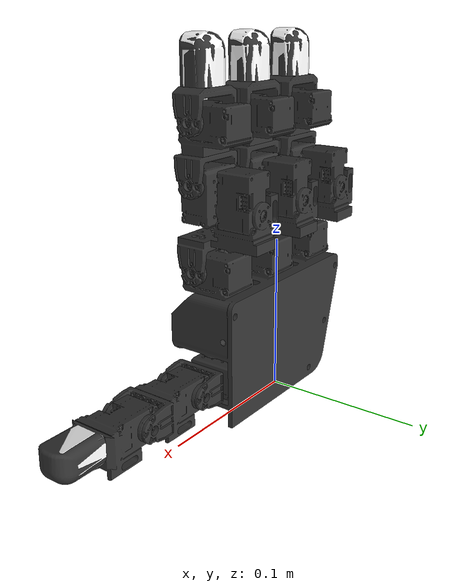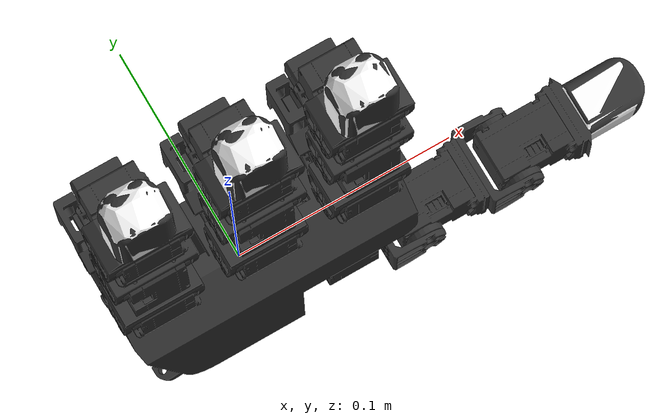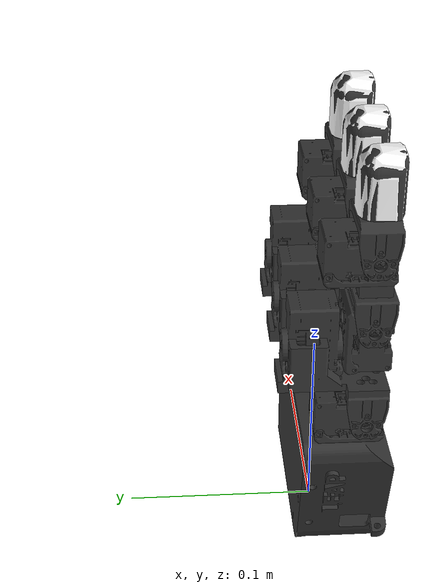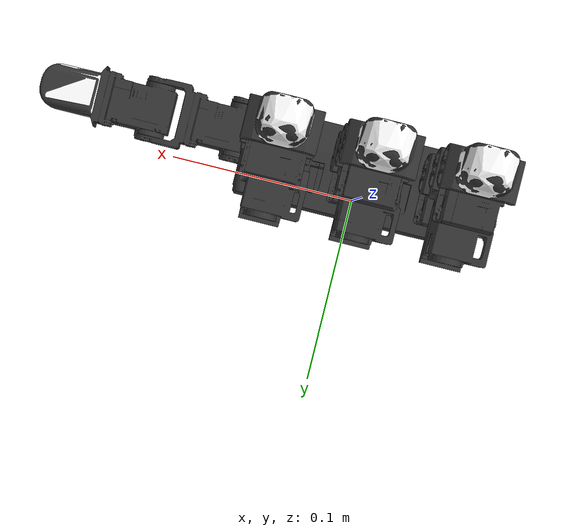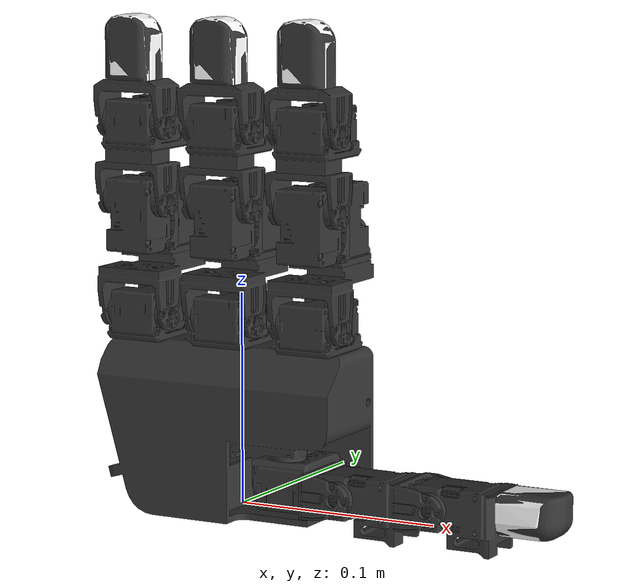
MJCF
<mujoco model="leap_right">
  <compiler angle="radian" meshdir="./assets/"/>
  <option integrator="implicitfast" cone="elliptic" impratio="100"/>

  <default>
    <default class="robot">
      <default class="motor">
        <joint damping="0.03" frictionloss="0.001" />
        <position kp="3.0" kv="0.01" />
      </default>
      <default class="visual">
        <geom material="default_material" contype="0" conaffinity="0" group="1" />
      </default>
      <default class="collision">
        <geom condim="3" contype="1" conaffinity="1" priority="1" group="3" solref="0.005 1" solimp="0.99 0.999 1e-05" friction="1 0.01 0.01" />
      </default>
    </default>
  </default>

  <asset>
    <material name="default_material" rgba="0.2 0.2 0.2 1" />
    <material name="white" rgba="1 1 1 1" />

    <!-- visual meshes (URDF names → actual .obj files in assets/) -->
    <mesh name="palm_lower.obj" file="palm_right.obj" />
    <mesh name="mcp_joint.obj" file="base.obj" />
    <mesh name="pip.obj" file="proximal.obj" />
    <mesh name="dip.obj" file="medial.obj" />
    <mesh name="fingertip.obj" file="distal.obj" />
    <mesh name="thumb_pip.obj" file="thumb_base.obj" />
    <mesh name="thumb_dip.obj" file="thumb_proximal.obj" />
    <mesh name="thumb_fingertip.obj" file="thumb_distal.obj" />
    <!-- collision tip meshes -->
    <mesh name="white_tip.obj" file="tip.obj" />
    <mesh name="white_tip_thumb.obj" file="thumb_tip.obj" />
  </asset>

  <worldbody>
    <body name="arm_attachment" pos="0 0 0" childclass="robot">
    <body name="base" pos="0.0 0.0 0.0" euler="0 0 -1.5708">
      <body name="palm_lower" pos="0 0.038 0.098" quat="0.7071090180427968 0.0 -0.7071045443232221 0.0">
        <inertial pos="0 0 0" quat="1.0 0.0 0.0 0.0" mass="0.237" diaginertia="0.000354094 0.000260915 0.000529257" />
        <geom name="palm_lower_collision_0" pos="-0.009 0.008 -0.011" quat="1.0 0.0 0.0 0.0" type="box" size="0.011 0.013 0.017" class="collision" />
        <geom name="palm_lower_collision_1" pos="-0.009 -0.037 -0.011" quat="1.0 0.0 0.0 0.0" type="box" size="0.011 0.013 0.017" class="collision" />
        <geom name="palm_lower_collision_2" pos="-0.009 -0.082 -0.011" quat="1.0 0.0 0.0 0.0" type="box" size="0.011 0.013 0.017" class="collision" />
        <geom name="palm_lower_collision_3" pos="-0.066 -0.078 -0.0115" quat="0.9890163047784168 0.0 0.0 -0.14780645751267352" type="box" size="0.029 0.01 0.023" class="collision" />
        <geom name="palm_lower_collision_4" pos="-0.03 -0.035 -0.003" quat="1.0 0.0 0.0 0.0" type="box" size="0.01 0.06 0.015" class="collision" />
        <geom name="palm_lower_collision_5" pos="-0.032 -0.035 -0.024" quat="0.9239556994702721 0.0 0.3824994972760097 0.0" type="box" size="0.005 0.06 0.01" class="collision" />
        <geom name="palm_lower_collision_6" pos="-0.048 -0.033 -0.0115" quat="1.0 0.0 0.0 0.0" type="box" size="0.012 0.058 0.023" class="collision" />
        <geom name="palm_lower_collision_7" pos="-0.078 -0.053 -0.0115" quat="1.0 0.0 0.0 0.0" type="box" size="0.022 0.026 0.023" class="collision" />
        <geom name="palm_lower_collision_8" pos="-0.098 -0.009 -0.006" quat="1.0 0.0 0.0 0.0" type="box" size="0.002 0.018 0.017" class="collision" />
        <geom name="palm_lower_collision_9" pos="-0.078 -0.003 0.01" quat="1.0 0.0 0.0 0.0" type="box" size="0.022 0.028 0.002" class="collision" />
        <geom name="palm_lower_visual" pos="-0.0200 0.02575 -0.0347" quat="1.0 0.0 0.0 0.0" material="default_material" type="mesh" mesh="palm_lower.obj" class="visual" />
        <body name="mcp_joint" pos="-0.0070 0.0230 -0.0187" quat="0.5000031633974483 0.4999999999899929 0.4999999999899929 -0.49999683660255156">
          <joint name="1" type="hinge" ref="0.0" class="motor" range="-0.314 2.23" axis="0 0 -1" />
          <inertial pos="0 0 0" quat="1.0 0.0 0.0 0.0" mass="0.044" diaginertia="1.1499e-05 7.796e-06 1.4759e-05" />
          <geom name="mcp_joint_collision_0" pos="0 0.018 0.0147" quat="1.0 0.0 0.0 0.0" type="box" size="0.01 0.003 0.017" class="collision" />
          <geom name="mcp_joint_collision_1" pos="-0.027 0.042 0.015" quat="1.0 0.0 0.0 0.0" type="box" size="0.014 0.02 0.01" class="collision" />
          <geom name="mcp_joint_collision_2" pos="-0.0262 0.02 0.0146" quat="1.0 0.0 0.0 0.0" type="box" size="0.017 0.003 0.01" class="collision" />
          <geom name="mcp_joint_collision_3" pos="-0.0295 0.035 0.029" quat="1.0 0.0 0.0 0.0" type="box" size="0.01 0.012 0.004" class="collision" />
          <geom name="mcp_joint_collision_4" pos="0 0.005 0.03" quat="1.0 0.0 0.0 0.0" type="box" size="0.007 0.01 0.002" class="collision" />
          <geom name="mcp_joint_collision_5" pos="0 0.005 -0.001" quat="1.0 0.0 0.0 0.0" type="box" size="0.007 0.01 0.002" class="collision" />
          <geom name="mcp_joint_visual" pos="0.0084 0.0077 0.01465" quat="1.0 0.0 0.0 0.0" material="default_material" type="mesh" mesh="mcp_joint.obj" class="visual" />
          <body name="pip" pos="-0.0122 0.03810 0.01450" quat="0.5000031633974483 -0.4999999999899929 -0.49999683660255156 0.4999999999899929">
            <joint name="0" type="hinge" ref="0.0" class="motor" range="-1.047 1.047" axis="0 0 -1" />
            <inertial pos="0 0 0" quat="1.0 0.0 0.0 0.0" mass="0.032" diaginertia="4.798e-06 2.862e-06 4.234e-06" />
            <geom name="pip_collision" pos="0.0075 -0.0002 -0.011" quat="1.0 0.0 0.0 0.0" type="box" size="0.017 0.013 0.011" class="collision" />
            <geom name="pip_visual" pos="0.0096 0.0002 0.0007" quat="0.5000031633974483 -0.4999999999899929 -0.4999999999899929 -0.49999683660255156" material="default_material" type="mesh" mesh="pip.obj" class="visual" />
            <body name="dip" pos="0.015 0.0143 -0.013" quat="0.5000031633974483 0.4999999999899929 -0.4999999999899929 0.49999683660255156">
              <joint name="2" type="hinge" ref="0.0" class="motor" range="-0.506 1.885" axis="0 0 -1" />
              <inertial pos="0 0 0" quat="1.0 0.0 0.0 0.0" mass="0.037" diaginertia="5.542e-06 5.727e-06 6.682e-06" />
              <geom name="dip_collision_0" pos="0 -0.02 0.015" quat="1.0 0.0 0.0 0.0" type="box" size="0.008 0.003 0.013" class="collision" />
              <geom name="dip_collision_1" pos="0 -0.016 0.015" quat="1.0 0.0 0.0 0.0" type="box" size="0.01 0.002 0.017" class="collision" />
              <geom name="dip_collision_2" pos="0 -0.0045 0.03" quat="1.0 0.0 0.0 0.0" type="box" size="0.007 0.01 0.002" class="collision" />
              <geom name="dip_collision_3" pos="0 -0.0045 0" quat="1.0 0.0 0.0 0.0" type="box" size="0.007 0.01 0.002" class="collision" />
              <geom name="dip_collision_4" pos="0.0075 -0.035 0.015" quat="1.0 0.0 0.0 0.0" type="box" size="0.017 0.011 0.013" class="collision" />
              <geom name="dip_visual" pos="0.0211 -0.0084 0.0097" quat="2.6794896585028633e-08 -0.9999999999999997 0.0 0.0" material="default_material" type="mesh" mesh="dip.obj" class="visual" />
              <body name="fingertip" pos="0 -0.0361 0.0002" quat="1.0 0.0 0.0 0.0">
                <joint name="3" type="hinge" ref="0.0" class="motor" range="-0.366 2.042" axis="0 0 -1" />
                <inertial pos="0 0 0" quat="1.0 0.0 0.0 0.0" mass="0.016" diaginertia="3.368e-06 1.556e-06 2.863e-06" />
                <geom name="fingertip_collision_0" pos="0 -0.017 0.015" quat="1.0 0.0 0.0 0.0" type="box" size="0.01 0.003 0.015" class="collision" />
                <geom name="fingertip_collision_1" pos="0 -0.006 0.03" quat="1.0 0.0 0.0 0.0" type="box" size="0.007 0.011 0.002" class="collision" />
                <geom name="fingertip_collision_2" pos="0 -0.006 -0.001" quat="1.0 0.0 0.0 0.0" type="box" size="0.007 0.011 0.002" class="collision" />
                <geom name="fingertip_collision_3" pos="0 0 0" quat="1.0 0.0 0.0 0.0" type="mesh" mesh="white_tip.obj" class="collision" />
                <geom name="fingertip_visual" pos="0.0132 -0.0061 0.0144" quat="2.6794896585028633e-08 0.9999999999999997 0.0 0.0" material="default_material" type="mesh" mesh="fingertip.obj" class="visual" />
                <geom name="fingertip_tip_visual" pos="0 0 0" type="mesh" mesh="white_tip.obj" material="white" class="visual" />
                <body name="index_tip_head" pos="0 -0.048 0.015" quat="1.0 0.0 0.0 0.0" />
              </body>
            </body>
          </body>
        </body>
        <body name="mcp_joint_2" pos="-0.0071 -0.0224 -0.0187" quat="0.5000031633974483 0.4999999999899929 0.4999999999899929 -0.49999683660255156">
          <joint name="5" type="hinge" ref="0.0" class="motor" range="-0.314 2.23" axis="0 0 -1" />
          <inertial pos="0 0 0" quat="1.0 0.0 0.0 0.0" mass="0.044" diaginertia="1.1499e-05 7.796e-06 1.4759e-05" />
          <geom name="mcp_joint_2_collision_0" pos="0 0.018 0.0147" quat="1.0 0.0 0.0 0.0" type="box" size="0.01 0.003 0.017" class="collision" />
          <geom name="mcp_joint_2_collision_1" pos="-0.027 0.042 0.015" quat="1.0 0.0 0.0 0.0" type="box" size="0.014 0.02 0.01" class="collision" />
          <geom name="mcp_joint_2_collision_2" pos="-0.0262 0.02 0.0146" quat="1.0 0.0 0.0 0.0" type="box" size="0.017 0.003 0.01" class="collision" />
          <geom name="mcp_joint_2_collision_3" pos="-0.0295 0.035 0.029" quat="1.0 0.0 0.0 0.0" type="box" size="0.01 0.012 0.004" class="collision" />
          <geom name="mcp_joint_2_collision_4" pos="0 0.005 0.03" quat="1.0 0.0 0.0 0.0" type="box" size="0.007 0.01 0.002" class="collision" />
          <geom name="mcp_joint_2_collision_5" pos="0 0.005 -0.001" quat="1.0 0.0 0.0 0.0" type="box" size="0.007 0.01 0.002" class="collision" />
          <geom name="mcp_joint_2_visual" pos="0.0084 0.0077 0.01465" quat="1.0 0.0 0.0 0.0" material="default_material" type="mesh" mesh="mcp_joint.obj" class="visual" />
          <body name="pip_2" pos="-0.0122 0.0381 0.0145" quat="0.5000031633974483 -0.4999999999899929 -0.49999683660255156 0.4999999999899929">
            <joint name="4" type="hinge" ref="0.0" class="motor" range="-1.047 1.047" axis="0 0 -1" />
            <inertial pos="0 0 0" quat="1.0 0.0 0.0 0.0" mass="0.032" diaginertia="4.798e-06 2.862e-06 4.234e-06" />
            <geom name="pip_2_collision" pos="0.0075 -0.0002 -0.011" quat="1.0 0.0 0.0 0.0" type="box" size="0.017 0.013 0.011" class="collision" />
            <geom name="pip_2_visual" pos="0.0096 0.0003 0.0007" quat="0.5000031633974483 -0.4999999999899929 -0.4999999999899929 -0.49999683660255156" material="default_material" type="mesh" mesh="pip.obj" class="visual" />
            <body name="dip_2" pos="0.015 0.0143 -0.013" quat="0.5000031633974483 0.4999999999899929 -0.4999999999899929 0.49999683660255156">
              <joint name="6" type="hinge" ref="0.0" class="motor" range="-0.506 1.885" axis="0 0 -1" />
              <inertial pos="0 0 0" quat="1.0 0.0 0.0 0.0" mass="0.037" diaginertia="5.542e-06 5.727e-06 6.682e-06" />
              <geom name="dip_2_collision_0" pos="0 -0.02 0.015" quat="1.0 0.0 0.0 0.0" type="box" size="0.008 0.003 0.013" class="collision" />
              <geom name="dip_2_collision_1" pos="0 -0.016 0.015" quat="1.0 0.0 0.0 0.0" type="box" size="0.01 0.002 0.017" class="collision" />
              <geom name="dip_2_collision_2" pos="0 -0.0045 0.03" quat="1.0 0.0 0.0 0.0" type="box" size="0.007 0.01 0.002" class="collision" />
              <geom name="dip_2_collision_3" pos="0 -0.0045 0" quat="1.0 0.0 0.0 0.0" type="box" size="0.007 0.01 0.002" class="collision" />
              <geom name="dip_2_collision_4" pos="0.0075 -0.035 0.015" quat="1.0 0.0 0.0 0.0" type="box" size="0.017 0.011 0.013" class="collision" />
              <geom name="dip_2_visual" pos="0.0211 -0.0084 0.0097" quat="1.3267948966775328e-06 -0.9999999999991198 0.0 0.0" material="default_material" type="mesh" mesh="dip.obj" class="visual" />
              <body name="fingertip_2" pos="0 -0.0361 0.0002" quat="1.0 0.0 0.0 0.0">
                <joint name="7" type="hinge" ref="0.0" class="motor" range="-0.366 2.042" axis="0 0 -1" />
                <inertial pos="0 0 0" quat="1.0 0.0 0.0 0.0" mass="0.016" diaginertia="3.368e-06 1.556e-06 2.863e-06" />
                <geom name="fingertip_2_collision_0" pos="0 -0.017 0.015" quat="1.0 0.0 0.0 0.0" type="box" size="0.01 0.003 0.015" class="collision" />
                <geom name="fingertip_2_collision_1" pos="0 -0.006 0.03" quat="1.0 0.0 0.0 0.0" type="box" size="0.007 0.011 0.002" class="collision" />
                <geom name="fingertip_2_collision_2" pos="0 -0.006 -0.001" quat="1.0 0.0 0.0 0.0" type="box" size="0.007 0.011 0.002" class="collision" />
                <geom name="fingertip_2_collision_3" pos="0 0 0" quat="1.0 0.0 0.0 0.0" type="mesh" mesh="white_tip.obj" class="collision" />
                <geom name="fingertip_2_visual" pos="0.0132 -0.0061 0.01450" quat="1.3267948966775328e-06 0.9999999999991198 0.0 0.0" material="default_material" type="mesh" mesh="fingertip.obj" class="visual" />
                <geom name="fingertip_2_tip_visual" pos="0 0 0" type="mesh" mesh="white_tip.obj" material="white" class="visual" />
                <body name="middle_tip_head" pos="0 -0.048 0.015" quat="1.0 0.0 0.0 0.0" />
              </body>
            </body>
          </body>
        </body>
        <body name="mcp_joint_3" pos="-0.00709 -0.0678 -0.0187" quat="0.5000031633974483 0.4999999999899929 0.4999999999899929 -0.49999683660255156">
          <joint name="9" type="hinge" ref="0.0" class="motor" range="-0.314 2.23" axis="0 0 -1" />
          <inertial pos="0 0 0" quat="1.0 0.0 0.0 0.0" mass="0.044" diaginertia="1.1499e-05 7.796e-06 1.4759e-05" />
          <geom name="mcp_joint_3_collision_0" pos="0 0.018 0.0147" quat="1.0 0.0 0.0 0.0" type="box" size="0.01 0.003 0.017" class="collision" />
          <geom name="mcp_joint_3_collision_1" pos="-0.027 0.042 0.015" quat="1.0 0.0 0.0 0.0" type="box" size="0.014 0.02 0.01" class="collision" />
          <geom name="mcp_joint_3_collision_2" pos="-0.0262 0.02 0.0146" quat="1.0 0.0 0.0 0.0" type="box" size="0.017 0.003 0.01" class="collision" />
          <geom name="mcp_joint_3_collision_3" pos="-0.0295 0.035 0.029" quat="1.0 0.0 0.0 0.0" type="box" size="0.01 0.012 0.004" class="collision" />
          <geom name="mcp_joint_3_collision_4" pos="0 0.005 0.03" quat="1.0 0.0 0.0 0.0" type="box" size="0.007 0.01 0.002" class="collision" />
          <geom name="mcp_joint_3_collision_5" pos="0 0.005 -0.001" quat="1.0 0.0 0.0 0.0" type="box" size="0.007 0.01 0.002" class="collision" />
          <geom name="mcp_joint_3_visual" pos="0.0084 0.0077 0.01465" quat="1.0 0.0 0.0 0.0" material="default_material" type="mesh" mesh="mcp_joint.obj" class="visual" />
          <body name="pip_3" pos="-0.0122 0.0381 0.0145" quat="0.5000031633974483 -0.4999999999899929 -0.49999683660255156 0.4999999999899929">
            <joint name="8" type="hinge" ref="0.0" class="motor" range="-1.047 1.047" axis="0 0 -1" />
            <inertial pos="0 0 0" quat="1.0 0.0 0.0 0.0" mass="0.032" diaginertia="4.798e-06 2.862e-06 4.234e-06" />
            <geom name="pip_3_collision" pos="0.0075 -0.0002 -0.011" quat="1.0 0.0 0.0 0.0" type="box" size="0.017 0.013 0.011" class="collision" />
            <geom name="pip_3_visual" pos="0.0096 0.0003 0.0007" quat="0.5000031633974483 -0.4999999999899929 -0.4999999999899929 -0.49999683660255156" material="default_material" type="mesh" mesh="pip.obj" class="visual" />
            <body name="dip_3" pos="0.015 0.0143 -0.013" quat="0.5000031633974483 0.4999999999899929 -0.4999999999899929 0.49999683660255156">
              <joint name="10" type="hinge" ref="0.0" class="motor" range="-0.506 1.885" axis="0 0 -1" />
              <inertial pos="0 0 0" quat="1.0 0.0 0.0 0.0" mass="0.037" diaginertia="5.542e-06 5.727e-06 6.682e-06" />
              <geom name="dip_3_collision_0" pos="0 -0.02 0.015" quat="1.0 0.0 0.0 0.0" type="box" size="0.008 0.003 0.013" class="collision" />
              <geom name="dip_3_collision_1" pos="0 -0.016 0.015" quat="1.0 0.0 0.0 0.0" type="box" size="0.01 0.002 0.017" class="collision" />
              <geom name="dip_3_collision_2" pos="0 -0.0045 0.03" quat="1.0 0.0 0.0 0.0" type="box" size="0.007 0.01 0.002" class="collision" />
              <geom name="dip_3_collision_3" pos="0 -0.0045 0" quat="1.0 0.0 0.0 0.0" type="box" size="0.007 0.01 0.002" class="collision" />
              <geom name="dip_3_collision_4" pos="0.0075 -0.035 0.015" quat="1.0 0.0 0.0 0.0" type="box" size="0.017 0.011 0.013" class="collision" />
              <geom name="dip_3_visual" pos="0.0211 -0.0084 0.0097" quat="1.3267948966775328e-06 -0.9999999999991198 0.0 0.0" material="default_material" type="mesh" mesh="dip.obj" class="visual" />
              <body name="fingertip_3" pos="0 -0.03609 0.0002" quat="1.0 0.0 0.0 0.0">
                <joint name="11" type="hinge" ref="0.0" class="motor" range="-0.366 2.042" axis="0 0 -1" />
                <inertial pos="0 0 0" quat="1.0 0.0 0.0 0.0" mass="0.016" diaginertia="3.368e-06 1.556e-06 2.863e-06" />
                <geom name="fingertip_3_collision_0" pos="0 -0.017 0.015" quat="1.0 0.0 0.0 0.0" type="box" size="0.01 0.003 0.015" class="collision" />
                <geom name="fingertip_3_collision_1" pos="0 -0.006 0.03" quat="1.0 0.0 0.0 0.0" type="box" size="0.007 0.011 0.002" class="collision" />
                <geom name="fingertip_3_collision_2" pos="0 -0.006 -0.001" quat="1.0 0.0 0.0 0.0" type="box" size="0.007 0.011 0.002" class="collision" />
                <geom name="fingertip_3_collision_3" pos="0 0 0" quat="1.0 0.0 0.0 0.0" type="mesh" mesh="white_tip.obj" class="collision" />
                <geom name="fingertip_3_visual" pos="0.0132 -0.0061 0.0145" quat="1.3267948966775328e-06 0.9999999999991198 0.0 0.0" material="default_material" type="mesh" mesh="fingertip.obj" class="visual" />
                <geom name="fingertip_3_tip_visual" pos="0 0 0" type="mesh" mesh="white_tip.obj" material="white" class="visual" />
                <body name="ring_tip_head" pos="0 -0.048 0.015" quat="1.0 0.0 0.0 0.0" />
              </body>
            </body>
          </body>
        </body>
        <body name="thumb_temp_base" pos="-0.0693 -0.0012 -0.0216" quat="0.7071090180427968 0.0 0.7071045443232221 0.0">
          <joint name="12" type="hinge" ref="0.0" class="motor" range="-0.349 2.094" axis="0 0 -1" />
          <inertial pos="0 0 0" quat="1.0 0.0 0.0 0.0" mass="0.032" diaginertia="4.798e-06 2.862e-06 4.234e-06" />
          <geom name="thumb_temp_base_collision" pos="0.0075 -0.0002 -0.011" quat="1.0 0.0 0.0 0.0" type="box" size="0.017 0.013 0.011" class="collision" />
          <geom name="thumb_temp_base_visual" pos="-0.0053 0.0003 0.00078" quat="0.5000031633974483 -0.4999999999899929 -0.4999999999899929 -0.49999683660255156" material="default_material" type="mesh" mesh="pip.obj" class="visual" />
          <body name="thumb_pip" pos="0 0.0143 -0.013" quat="0.5000031633974483 0.4999999999899929 -0.4999999999899929 0.49999683660255156">
            <joint name="13" type="hinge" ref="0.0" class="motor" range="-0.47 2.443" axis="0 0 -1" />
            <inertial pos="0 0 0" quat="1.0 0.0 0.0 0.0" mass="0.003" diaginertia="5.93e-07 5.49e-07 2.24e-07" />
            <geom name="thumb_pip_collision_0" pos="0 0 -0.0015" quat="1.0 0.0 0.0 0.0" type="box" size="0.009 0.0165 0.002" class="collision" />
            <geom name="thumb_pip_collision_1" pos="0 -0.015 -0.013" quat="1.0 0.0 0.0 0.0" type="box" size="0.007 0.002 0.01" class="collision" />
            <geom name="thumb_pip_collision_2" pos="0 0.015 -0.013" quat="1.0 0.0 0.0 0.0" type="box" size="0.007 0.002 0.01" class="collision" />
            <geom name="thumb_pip_visual" pos="0.01196 0 -0.0158" quat="0.7071090180427968 0.7071045443232221 0.0 0.0" material="default_material" type="mesh" mesh="thumb_pip.obj" class="visual" />
            <body name="thumb_dip" pos="0 0.0145 -0.017" quat="0.7071090180427968 -0.7071045443232221 0.0 0.0">
              <joint name="14" type="hinge" ref="0.0" class="motor" range="-1.20 1.90" axis="0 0 -1" />
              <inertial pos="0 0 0" quat="1.0 0.0 0.0 0.0" mass="0.038" diaginertia="8.474e-06 3.841e-06 7.679e-06" />
              <geom name="thumb_dip_collision_0" pos="0 0.0105 -0.014" quat="1.0 0.0 0.0 0.0" type="box" size="0.01 0.02 0.012" class="collision" />
              <geom name="thumb_dip_collision_1" pos="0 0.031 -0.015" quat="1.0 0.0 0.0 0.0" type="box" size="0.01 0.002 0.016" class="collision" />
              <geom name="thumb_dip_collision_2" pos="0 0.042 0.001" quat="1.0 0.0 0.0 0.0" type="box" size="0.007 0.01 0.002" class="collision" />
              <geom name="thumb_dip_collision_3" pos="0 0.042 -0.029" quat="1.0 0.0 0.0 0.0" type="box" size="0.007 0.01 0.002" class="collision" />
              <geom name="thumb_dip_collision_4" pos="-0.0135 0.0175 -0.011656" quat="1.0 0.0 0.0 0.0" type="box" size="0.005 0.012 0.009" class="collision" />
              <geom name="thumb_dip_visual" pos="0.0439 0.0579 -0.0086" quat="1.0 0.0 0.0 0.0" material="default_material" type="mesh" mesh="thumb_dip.obj" class="visual" />
              <body name="thumb_fingertip" pos="0 0.0466 0.0002" quat="1.3267948966775328e-06 0.0 0.0 0.9999999999991198">
                <joint name="15" type="hinge" ref="0.0" class="motor" range="-1.34 1.88" axis="0 0 -1" />
                <inertial pos="0 0 0" quat="1.0 0.0 0.0 0.0" mass="0.049" diaginertia="2.0372e-05 4.336e-06 1.9845e-05" />
                <geom name="thumb_fingertip_collision_0" pos="0 -0.0085 -0.015" quat="1.0 0.0 0.0 0.0" type="box" size="0.01 0.018 0.012" class="collision" />
                <geom name="thumb_fingertip_collision_1" pos="0 -0.029 -0.014" quat="1.0 0.0 0.0 0.0" type="box" size="0.01 0.002 0.015" class="collision" />
                <geom name="thumb_fingertip_collision_2" pos="0.015 -0.0175 -0.0115" quat="1.0 0.0 0.0 0.0" type="box" size="0.004 0.012 0.009" class="collision" />
                <geom name="thumb_fingertip_collision_3" pos="0 0 0" quat="1.0 0.0 0.0 0.0" type="mesh" mesh="white_tip_thumb.obj" class="collision" />
                <geom name="thumb_fingertip_visual" pos="0.0625 0.0784 0.0489" quat="1.0 0.0 0.0 0.0" material="default_material" type="mesh" mesh="thumb_fingertip.obj" class="visual" />
                <geom name="thumb_tip_visual" pos="0 0 0" type="mesh" mesh="white_tip_thumb.obj" material="white" class="visual" />
                <body name="thumb_tip_head" pos="0 -0.06 -0.015" quat="1.0 0.0 0.0 0.0" />
              </body>
            </body>
          </body>
        </body>
      </body>
      <site name="base_site" pos="0 0 0" quat="1 0 0 0" />
      <camera name="front_camera" mode="track" fovy="90.0" quat="4.329780281177467e-17 4.329780281177466e-17 0.7071067811865475 0.7071067811865476" pos="0.0 2.0 0.5" />
      <camera name="side_camera" mode="track" fovy="90.0" quat="-0.5 -0.4999999999999999 0.5 0.5000000000000001" pos="-2.0 0.0 0.5" />
    </body>  <!-- base -->
    </body>  <!-- arm_attachment -->
  </worldbody>

  <actuator>
    <!-- index: mcp, rot, pip, dip -->
    <position name="1_ctrl" joint="1" class="motor" ctrlrange="-0.314 2.23" />
    <position name="0_ctrl" joint="0" class="motor" ctrlrange="-1.047 1.047" />
    <position name="2_ctrl" joint="2" class="motor" ctrlrange="-0.506 1.885" />
    <position name="3_ctrl" joint="3" class="motor" ctrlrange="-0.366 2.042" />
    <!-- middle: mcp, rot, pip, dip -->
    <position name="5_ctrl" joint="5" class="motor" ctrlrange="-0.314 2.23" />
    <position name="4_ctrl" joint="4" class="motor" ctrlrange="-1.047 1.047" />
    <position name="6_ctrl" joint="6" class="motor" ctrlrange="-0.506 1.885" />
    <position name="7_ctrl" joint="7" class="motor" ctrlrange="-0.366 2.042" />
    <!-- ring: mcp, rot, pip, dip -->
    <position name="9_ctrl" joint="9" class="motor" ctrlrange="-0.314 2.23" />
    <position name="8_ctrl" joint="8" class="motor" ctrlrange="-1.047 1.047" />
    <position name="10_ctrl" joint="10" class="motor" ctrlrange="-0.506 1.885" />
    <position name="11_ctrl" joint="11" class="motor" ctrlrange="-0.366 2.042" />
    <!-- thumb: cmc, axl, mcp, ipl -->
    <position name="12_ctrl" joint="12" class="motor" ctrlrange="-0.349 2.094" />
    <position name="13_ctrl" joint="13" class="motor" ctrlrange="-0.47 2.443" />
    <position name="14_ctrl" joint="14" class="motor" ctrlrange="-1.20 1.90" />
    <position name="15_ctrl" joint="15" class="motor" ctrlrange="-1.34 1.88" />
  </actuator>

  <contact>
    <!-- Adjacent body collisions -->
    <exclude body1="mcp_joint" body2="pip" />
    <exclude body1="palm_lower" body2="mcp_joint" />
    <exclude body1="pip" body2="dip" />
    <exclude body1="dip" body2="fingertip" />
    <exclude body1="mcp_joint_2" body2="pip_2" />
    <exclude body1="palm_lower" body2="mcp_joint_2" />
    <exclude body1="pip_2" body2="dip_2" />
    <exclude body1="dip_2" body2="fingertip_2" />
    <exclude body1="mcp_joint_3" body2="pip_3" />
    <exclude body1="palm_lower" body2="mcp_joint_3" />
    <exclude body1="pip_3" body2="dip_3" />
    <exclude body1="dip_3" body2="fingertip_3" />
    <exclude body1="palm_lower" body2="thumb_temp_base" />
    <!-- Intrafinger collisions -->
    <exclude body1="thumb_temp_base" body2="thumb_pip" />
    <exclude body1="thumb_pip" body2="thumb_dip" />
    <exclude body1="thumb_dip" body2="thumb_fingertip" />
    <exclude body1="mcp_joint" body2="pip" />
    <exclude body1="pip" body2="dip" />
    <exclude body1="dip" body2="fingertip" />
    <exclude body1="mcp_joint_2" body2="pip_2" />
    <exclude body1="pip_2" body2="dip_2" />
    <exclude body1="dip_2" body2="fingertip_2" />
    <exclude body1="mcp_joint_3" body2="pip_3" />
    <exclude body1="pip_3" body2="dip_3" />
    <exclude body1="dip_3" body2="fingertip_3" />
    <!-- Fingertip pinch collisions (even if body is being driven hard, this is useful in practice) -->
    <exclude body1="thumb_fingertip" body2="fingertip" />
    <exclude body1="thumb_fingertip" body2="fingertip_2" />
    <exclude body1="thumb_fingertip" body2="fingertip_3" />
    <exclude body1="fingertip" body2="fingertip_2" />
    <exclude body1="fingertip" body2="fingertip_3" />
    <exclude body1="fingertip_2" body2="fingertip_3" />
  </contact>

  <sensor>
    <framepos name="base_site_pos" objtype="site" objname="base_site" />
    <framequat name="base_site_quat" objtype="site" objname="base_site" />
    <framelinvel name="base_site_linvel" objtype="site" objname="base_site" />
    <frameangvel name="base_site_angvel" objtype="site" objname="base_site" />
    <velocimeter name="base_site_vel" site="base_site" />
  </sensor>
</mujoco>
